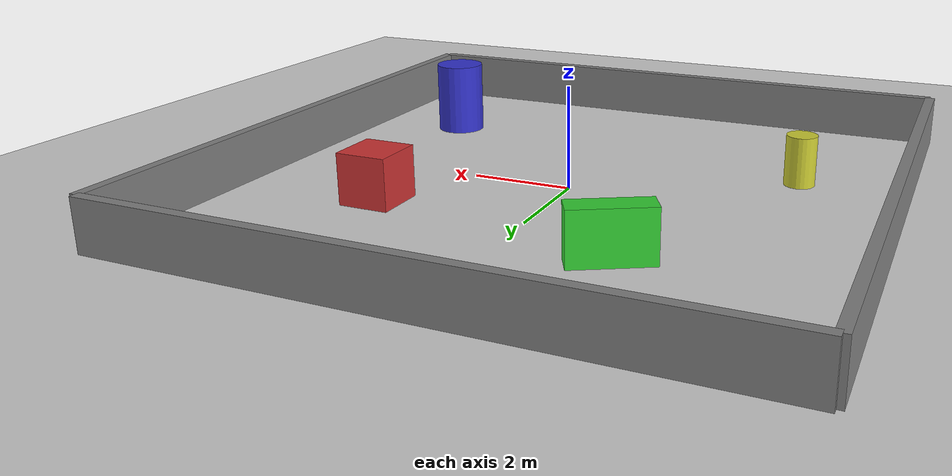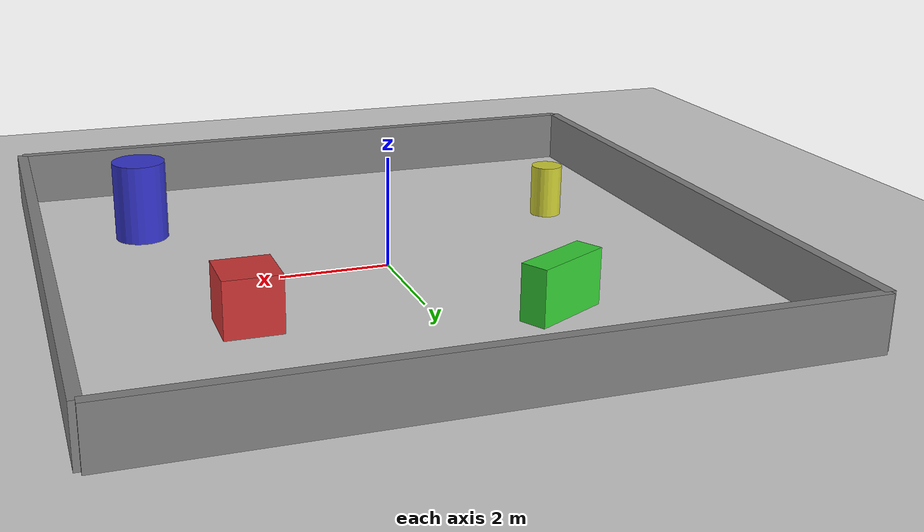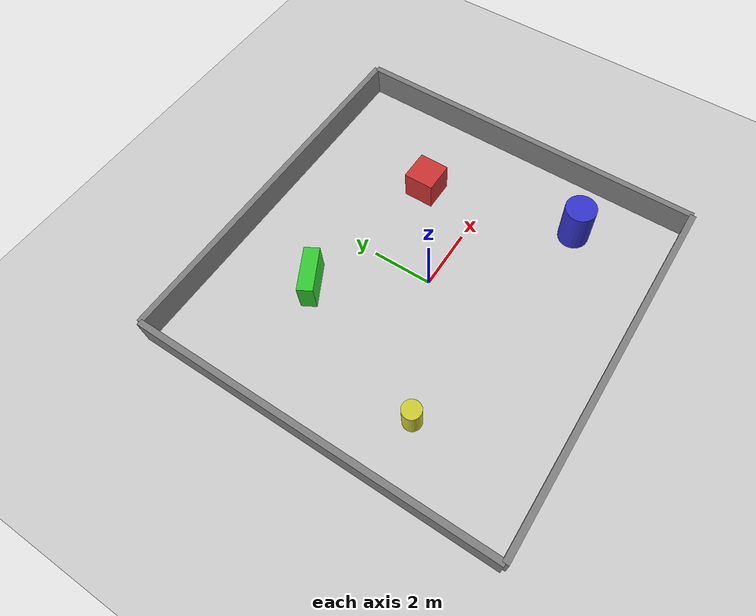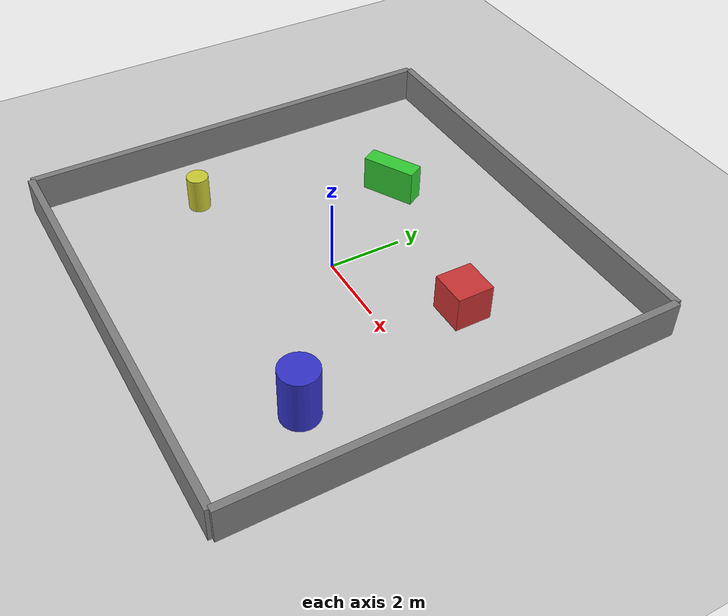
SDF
<?xml version="1.0" ?>
<sdf version="1.8">
  <world name="obstacles_world">

    <!-- Physics configuration -->
    <physics name="1ms" type="ignored">
      <max_step_size>0.001</max_step_size>
      <real_time_factor>1.0</real_time_factor>
    </physics>

    <!-- Required plugins -->
    <plugin filename="gz-sim-physics-system" name="gz::sim::systems::Physics"/>
    <plugin filename="gz-sim-user-commands-system" name="gz::sim::systems::UserCommands"/>
    <plugin filename="gz-sim-scene-broadcaster-system" name="gz::sim::systems::SceneBroadcaster"/>
    <plugin filename="gz-sim-sensors-system" name="gz::sim::systems::Sensors">
      <render_engine>ogre2</render_engine>
    </plugin>
    <plugin filename="gz-sim-imu-system" name="gz::sim::systems::Imu"/>
    <plugin filename="gz-sim-contact-system" name="gz::sim::systems::Contact"/>

    <!-- Lighting -->
    <light type="directional" name="sun">
      <cast_shadows>true</cast_shadows>
      <pose>0 0 10 0 0 0</pose>
      <diffuse>0.8 0.8 0.8 1</diffuse>
      <specular>0.2 0.2 0.2 1</specular>
      <direction>-0.5 0.1 -0.9</direction>
    </light>

    <!-- Ground plane -->
    <model name="ground_plane">
      <static>true</static>
      <link name="link">
        <collision name="collision">
          <geometry>
            <plane>
              <normal>0 0 1</normal>
              <size>100 100</size>
            </plane>
          </geometry>
          <surface>
            <friction>
              <ode>
                <mu>100</mu>
                <mu2>50</mu2>
              </ode>
            </friction>
          </surface>
        </collision>
        <visual name="visual">
          <geometry>
            <plane>
              <normal>0 0 1</normal>
              <size>100 100</size>
            </plane>
          </geometry>
          <material>
            <ambient>0.8 0.8 0.8 1</ambient>
            <diffuse>0.8 0.8 0.8 1</diffuse>
          </material>
        </visual>
      </link>
    </model>

    <!-- Obstacle: Red Box -->
    <model name="obstacle_box_1">
      <static>true</static>
      <pose>3 2 0.5 0 0 0</pose>
      <link name="link">
        <collision name="collision">
          <geometry>
            <box><size>1 1 1</size></box>
          </geometry>
        </collision>
        <visual name="visual">
          <geometry>
            <box><size>1 1 1</size></box>
          </geometry>
          <material>
            <ambient>0.8 0.2 0.2 1</ambient>
            <diffuse>0.8 0.2 0.2 1</diffuse>
          </material>
        </visual>
      </link>
    </model>

    <!-- Obstacle: Green Box -->
    <model name="obstacle_box_2">
      <static>true</static>
      <pose>-2 3 0.5 0 0 0.5</pose>
      <link name="link">
        <collision name="collision">
          <geometry>
            <box><size>1.5 0.5 1</size></box>
          </geometry>
        </collision>
        <visual name="visual">
          <geometry>
            <box><size>1.5 0.5 1</size></box>
          </geometry>
          <material>
            <ambient>0.2 0.8 0.2 1</ambient>
            <diffuse>0.2 0.8 0.2 1</diffuse>
          </material>
        </visual>
      </link>
    </model>

    <!-- Obstacle: Blue Cylinder -->
    <model name="obstacle_cylinder_1">
      <static>true</static>
      <pose>4 -3 0.75 0 0 0</pose>
      <link name="link">
        <collision name="collision">
          <geometry>
            <cylinder>
              <radius>0.5</radius>
              <length>1.5</length>
            </cylinder>
          </geometry>
        </collision>
        <visual name="visual">
          <geometry>
            <cylinder>
              <radius>0.5</radius>
              <length>1.5</length>
            </cylinder>
          </geometry>
          <material>
            <ambient>0.2 0.2 0.8 1</ambient>
            <diffuse>0.2 0.2 0.8 1</diffuse>
          </material>
        </visual>
      </link>
    </model>

    <!-- Obstacle: Yellow Cylinder -->
    <model name="obstacle_cylinder_2">
      <static>true</static>
      <pose>-4 -2 0.5 0 0 0</pose>
      <link name="link">
        <collision name="collision">
          <geometry>
            <cylinder>
              <radius>0.3</radius>
              <length>1.0</length>
            </cylinder>
          </geometry>
        </collision>
        <visual name="visual">
          <geometry>
            <cylinder>
              <radius>0.3</radius>
              <length>1.0</length>
            </cylinder>
          </geometry>
          <material>
            <ambient>0.8 0.8 0.2 1</ambient>
            <diffuse>0.8 0.8 0.2 1</diffuse>
          </material>
        </visual>
      </link>
    </model>

    <!-- Walls -->
    <model name="wall_north">
      <static>true</static>
      <pose>0 6 0.5 0 0 0</pose>
      <link name="link">
        <collision name="collision">
          <geometry><box><size>12 0.2 1</size></box></geometry>
        </collision>
        <visual name="visual">
          <geometry><box><size>12 0.2 1</size></box></geometry>
          <material>
            <ambient>0.5 0.5 0.5 1</ambient>
            <diffuse>0.5 0.5 0.5 1</diffuse>
          </material>
        </visual>
      </link>
    </model>

    <model name="wall_south">
      <static>true</static>
      <pose>0 -6 0.5 0 0 0</pose>
      <link name="link">
        <collision name="collision">
          <geometry><box><size>12 0.2 1</size></box></geometry>
        </collision>
        <visual name="visual">
          <geometry><box><size>12 0.2 1</size></box></geometry>
          <material>
            <ambient>0.5 0.5 0.5 1</ambient>
            <diffuse>0.5 0.5 0.5 1</diffuse>
          </material>
        </visual>
      </link>
    </model>

    <model name="wall_east">
      <static>true</static>
      <pose>6 0 0.5 0 0 1.5708</pose>
      <link name="link">
        <collision name="collision">
          <geometry><box><size>12 0.2 1</size></box></geometry>
        </collision>
        <visual name="visual">
          <geometry><box><size>12 0.2 1</size></box></geometry>
          <material>
            <ambient>0.5 0.5 0.5 1</ambient>
            <diffuse>0.5 0.5 0.5 1</diffuse>
          </material>
        </visual>
      </link>
    </model>

    <model name="wall_west">
      <static>true</static>
      <pose>-6 0 0.5 0 0 1.5708</pose>
      <link name="link">
        <collision name="collision">
          <geometry><box><size>12 0.2 1</size></box></geometry>
        </collision>
        <visual name="visual">
          <geometry><box><size>12 0.2 1</size></box></geometry>
          <material>
            <ambient>0.5 0.5 0.5 1</ambient>
            <diffuse>0.5 0.5 0.5 1</diffuse>
          </material>
        </visual>
      </link>
    </model>

    <!-- Scene -->
    <scene>
      <ambient>0.4 0.4 0.4 1</ambient>
      <background>0.7 0.7 0.7 1</background>
      <shadows>true</shadows>
    </scene>

    <!-- GUI -->
    <gui fullscreen="0">
      <plugin filename="MinimalScene" name="3D View">
        <gz-gui>
          <title>3D View</title>
          <property type="bool" key="showTitleBar">false</property>
          <property type="string" key="state">docked</property>
        </gz-gui>
        <engine>ogre2</engine>
        <scene>scene</scene>
        <camera_pose>-10 -10 8 0 0.5 0.785</camera_pose>
      </plugin>
      <plugin filename="GzSceneManager" name="Scene Manager"/>
      <plugin filename="InteractiveViewControl" name="Interactive View Control"/>
      <plugin filename="WorldControl" name="World control">
        <gz-gui>
          <title>World control</title>
          <property type="bool" key="showTitleBar">false</property>
          <property type="string" key="state">floating</property>
        </gz-gui>
        <play_pause>true</play_pause>
        <step>true</step>
        <start_paused>true</start_paused>
      </plugin>
      <plugin filename="WorldStats" name="World stats"/>
      <plugin filename="EntityTree" name="Entity tree"/>
    </gui>

  </world>
</sdf>
